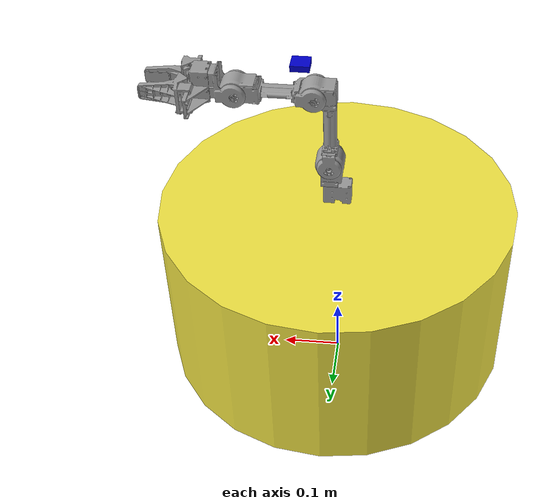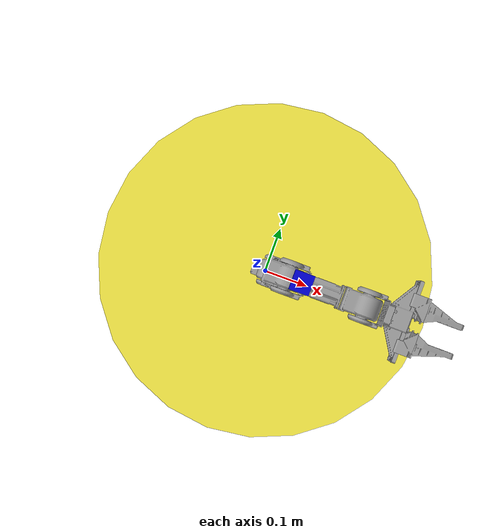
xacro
<?xml version="1.0"?>
<robot name="open_manipulator" xmlns:xacro="http://ros.org/wiki/xacro">
  <xacro:include filename="$(find open_manipulator_description)/urdf/materials.xacro" />
  <xacro:include filename="$(find open_manipulator_description)/urdf/open_manipulator.xacro" />
  <xacro:include filename="$(find open_manipulator_description)/urdf/ros2_control.xacro" />
  <xacro:include filename="$(find open_manipulator_description)/urdf/depth_camera.xacro" />

  <xacro:property name="base_link_height" value="0.3"/>
  <xacro:property name="base_link_radius" value="0.3"/>
  <xacro:property name="offset_from_ground_to_base_link" value="${base_link_height/2 + 0.05}"/>
  <xacro:property name="offset_from_base_link_link1" value="${base_link_height/2 + 0.01}"/>

  <link name="world"/>
  <link name="base_link">
      <visual>
        <geometry>
          <cylinder length="${base_link_height}" radius="${base_link_radius}"/>
        </geometry>
      </visual>
      <collision>
        <geometry>
          <cylinder length="${base_link_height}" radius="${base_link_radius}"/>
        </geometry>
      </collision>
   </link>

  <joint name="world_fixed" type="fixed">
    <origin xyz="0 0 ${offset_from_ground_to_base_link}" rpy="0 0 0"/>
    <parent link="world"/>
    <child link="base_link"/>
  </joint>

  <joint name="based_fixed" type="fixed">
    <origin xyz="0 0 ${offset_from_base_link_link1}" rpy="0 0 0"/>
    <parent link="base_link"/>
    <child link="link1"/>
  </joint>
</robot>

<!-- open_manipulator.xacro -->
<robot xmlns:xacro="http://ros.org/wiki/xacro">
  <xacro:macro  name="arm_link" params="name *origin *inertial mesh_name">
    <link name="${name}">
      <xacro:insert_block name="inertial"/>
      <visual>
        <xacro:insert_block name="origin"/>
        <geometry>
          <mesh filename="file://$(find open_manipulator_description)/meshes/${mesh_name}" scale="0.001 0.001 0.001"/>
        </geometry>
        <material name="grey"/>
      </visual>
      <collision>
        <xacro:insert_block name="origin"/>
        <geometry>
          <mesh filename="file://$(find open_manipulator_description)/meshes/${mesh_name}" scale="0.001 0.001 0.001"/>
        </geometry>
      </collision>
    </link>
  </xacro:macro>

  <xacro:arm_link name="link1" mesh_name="chain_link1.stl">
    <origin xyz="0 0 0" rpy="0 0 0"/>
    <inertial>
      <origin xyz="3.0876154e-04 0.0000000e+00 -1.2176461e-04" />
      <mass value="7.9119962e-02" />
      <inertia ixx="1.2505234e-05" ixy="0.0" ixz="-1.7855208e-07"
              iyy="2.1898364e-05" iyz="0.0"
              izz="1.9267361e-05" />
    </inertial>
  </xacro:arm_link>

  <joint name="joint1" type="revolute">
    <parent link="link1"/>
    <child link="link2"/>
    <origin xyz="0.012 0.0 0.017" rpy="0 0 0"/>
    <axis xyz="0 0 1"/>
    <dynamics damping="0.7" friction="1.0"/>
    <limit velocity="4.8" effort="5" lower="${-pi*0.9}" upper="${pi*0.9}" />
  </joint>

  <xacro:arm_link name="link2" mesh_name="chain_link2.stl">
    <origin xyz="0 0 0.019" rpy="0 0 0"/>
    <inertial>
      <origin xyz="-3.0184870e-04 5.4043684e-04 ${0.018 + 2.9433464e-02}" />
      <mass value="9.8406837e-02" />
      <inertia ixx="3.4543422e-05" ixy="-1.6031095e-08" ixz="-3.8375155e-07"
               iyy="3.2689329e-05" iyz="2.8511935e-08"
               izz="1.8850320e-05" />
    </inertial>
  </xacro:arm_link>

  <joint name="joint2" type="revolute">
    <parent link="link2"/>
    <child link="link3"/>
    <origin xyz="0.0 0.0 0.0595" rpy="0 0 0"/>
    <axis xyz="0 1 0"/>
    <dynamics damping="0.7" friction="1.0"/>
    <limit velocity="4.8" effort="5" lower="${-pi*0.57}" upper="${pi*0.5}" />
  </joint>

  <xacro:arm_link name="link3" mesh_name="chain_link3.stl">
    <origin xyz="0 0 0" rpy="0 0 0"/>
    <inertial>
      <origin xyz="1.0308393e-02 3.7743363e-04 1.0170197e-01" />
      <mass value="1.3850917e-01" />
      <inertia ixx="3.3055381e-04" ixy="-9.7940978e-08" ixz="-3.8505711e-05"
               iyy="3.4290447e-04" iyz="-1.5717516e-06"
               izz="6.0346498e-05" />
    </inertial>
  </xacro:arm_link>

  <joint name="joint3" type="revolute">
    <parent link="link3"/>
    <child link="link4"/>
    <origin xyz="0.024 0 0.128" rpy="0 0 0"/>
    <axis xyz="0 1 0"/>
    <dynamics damping="0.7" friction="1.0"/>
    <limit velocity="4.8" effort="5" lower="${-pi*0.3}" upper="${pi*0.44}" />
  </joint>

  <xacro:arm_link name="link4" mesh_name="chain_link4.stl">
    <origin xyz="0 0 0" rpy="0 0 0"/>
    <inertial>
      <origin xyz="9.0909590e-02 3.8929816e-04 2.2413279e-04" />
      <mass value="1.3274562e-01" />
      <inertia ixx="3.0654178e-05" ixy="-1.2764155e-06" ixz="-2.6874417e-07"
               iyy="2.4230292e-04" iyz="1.1559550e-08"
               izz="2.5155057e-04" />
    </inertial>
  </xacro:arm_link>

  <joint name="joint4" type="revolute">
    <parent link="link4"/>
    <child link="link5"/>
    <origin xyz="0.124 0.0 0.0" rpy="0 0 0"/>
    <axis xyz="0 1 0"/>
    <dynamics damping="0.7" friction="1.0"/>
    <limit velocity="4.8" effort="5" lower="${-pi*0.57}" upper="${pi*0.65}" />
  </joint>

  <xacro:arm_link name="link5" mesh_name="chain_link5.stl">
    <origin xyz="0 0 0" rpy="0 0 0"/>
    <inertial>
      <origin xyz="4.4206755e-02 3.6839985e-07 8.9142216e-03" />
      <mass value="1.4327573e-01" />
      <inertia ixx="8.0870749e-05" ixy="0.0" ixz="-1.0157896e-06"
               iyy="7.5980465e-05" iyz="0.0"
               izz="9.3127351e-05" />
    </inertial>
  </xacro:arm_link>

  <joint name="gripper" type="prismatic">
    <parent link="link5"/>
    <child link="gripper_link"/>
    <origin xyz="0.0817 0.021 0.0" rpy="0 0 0"/>
    <axis xyz="0 1 0"/>
    <limit velocity="4.8" effort="5" lower="-0.010" upper="0.019" />
  </joint>

  <xacro:arm_link name="gripper_link" mesh_name="chain_link_grip_l.stl">
    <origin xyz="0 0 0" rpy="0 0 0"/>
    <inertial>
      <origin xyz="0 0 0" />
      <mass value="1.0e-03" />
      <inertia ixx="1.0e-03" ixy="0.0" ixz="0.0"
               iyy="1.0e-03" iyz="0.0"
               izz="1.0e-03" />
    </inertial>
  </xacro:arm_link>

  <joint name="gripper_sub" type="prismatic">
    <parent link="link5"/>
    <child link="gripper_link_sub"/>
    <origin xyz="0.0817 -0.021 0" rpy="0 0 0"/>
    <axis xyz="0 -1 0"/>
    <limit velocity="4.8" effort="5" lower="-0.010" upper="0.019" />
    <mimic joint="gripper" multiplier="1"/>
  </joint>

  <xacro:arm_link name="gripper_link_sub" mesh_name="chain_link_grip_r.stl">
    <origin xyz="0 0 0" rpy="0 0 0"/>
    <inertial>
      <origin xyz="0 0 0" />
      <mass value="1.0e-03" />
      <inertia ixx="1.0e-03" ixy="0.0" ixz="0.0"
               iyy="1.0e-03" iyz="0.0"
               izz="1.0e-03" />
    </inertial>
  </xacro:arm_link>

  <link name="end_efector_link" />
  <joint name="end_efector" type="fixed">
    <parent link="link5"/>
    <child link="end_efector_link"/>
    <origin xyz="0.1 0.0 0.0" rpy="0 0 0"/>
  </joint>
</robot>

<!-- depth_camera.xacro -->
<robot xmlns:xacro="http://www.ros.org/wiki/xacro" >
  <xacro:property name="camera_depth" value="0.01" />
  <xacro:property name="camera_width" value="0.03" />
  <xacro:property name="camera_height" value="0.03" />

  <joint name="camera_joint" type="fixed">
    <parent link="link4"/>
    <child link="camera_link"/>
    <origin xyz="0.02 0 0.05" rpy="0 ${pi/2} 0"/>
  </joint>

  <link name="camera_link">
    <visual>
      <geometry>
        <box size="${camera_depth} ${camera_width} ${camera_height}"/>
      </geometry>
      <material name="blue">
        <color rgba="0 0 0.8 1"/>
      </material>
    </visual>
    <collision>
      <geometry>
        <box size="${camera_depth} ${camera_width} ${camera_height}"/>
      </geometry>
    </collision>
    <inertial>
      <origin xyz="0 0 0" rpy="0 0 0"/>
      <mass value="0.01"/>
      <inertia ixx="0.00001" ixy="0.0" ixz="0.0" iyy="0.00001" iyz="0.0" izz="0.00001"/>
    </inertial>
  </link>

  <joint name="camera_optical_joint" type="fixed">
    <parent link="camera_link"/>
    <child link="camera_link_optical"/>
    <origin xyz="0 0 0" rpy="${-pi/2} 0 ${-pi/2}"/>
  </joint>
  <link name="camera_link_optical"></link>

  <gazebo reference="camera_link">
    <sensor name="camera" type="rgbd_camera">
      <visualize>true</visualize>
      <always_on>true</always_on>
      <update_rate>30</update_rate>
      <topic>camera</topic>
      <enable_metrics>false</enable_metrics>
      <camera>
        <horizontal_fov>1.089</horizontal_fov>
        <image>
          <width>640</width>
          <height>480</height>
          <format>R8G8B8</format>
        </image>
        <clip>
          <near>0.05</near>
          <far>8.0</far>
        </clip>
        <lens>
          <intrinsics>
            <fx>554.25469</fx>
            <fy>554.25469</fy>
            <cx>320.5</cx>
            <cy>240.5</cy>
            <s>0</s>
          </intrinsics>
          <!-- Anti-glare settings -->
          <scale_to_hfov>true</scale_to_hfov>
        </lens>
        <!-- Reduce overexposure and glare -->
        <distortion>
          <k1>0.0</k1>
          <k2>0.0</k2>
          <k3>0.0</k3>
          <p1>0.0</p1>
          <p2>0.0</p2>
          <center>0.5 0.5</center>
        </distortion>
        <noise>
          <type>gaussian</type>
          <mean>0.0</mean>
          <stddev>0.007</stddev>
        </noise>
        <optical_frame_id>camera_link_optical</optical_frame_id>
      </camera>
    </sensor>
  </gazebo>
</robot>
